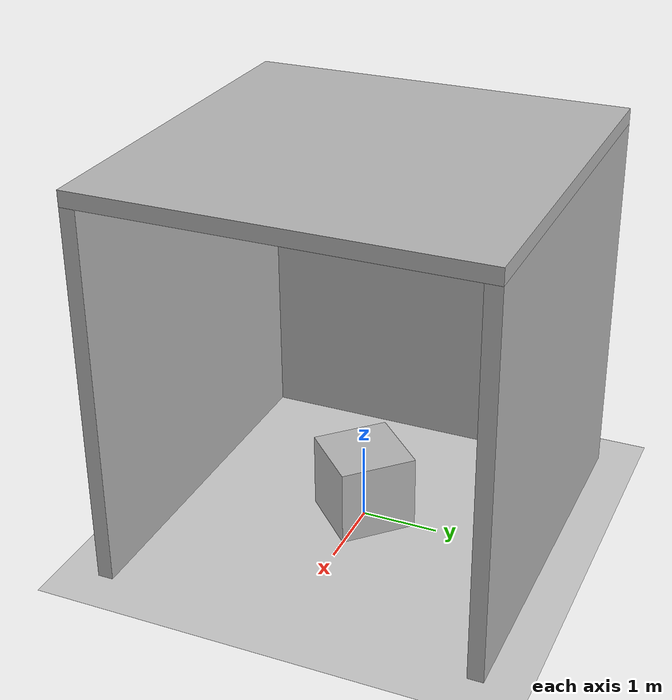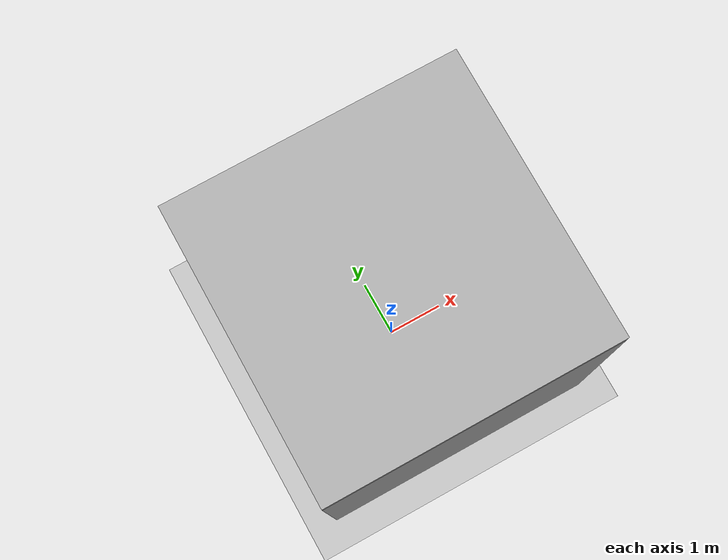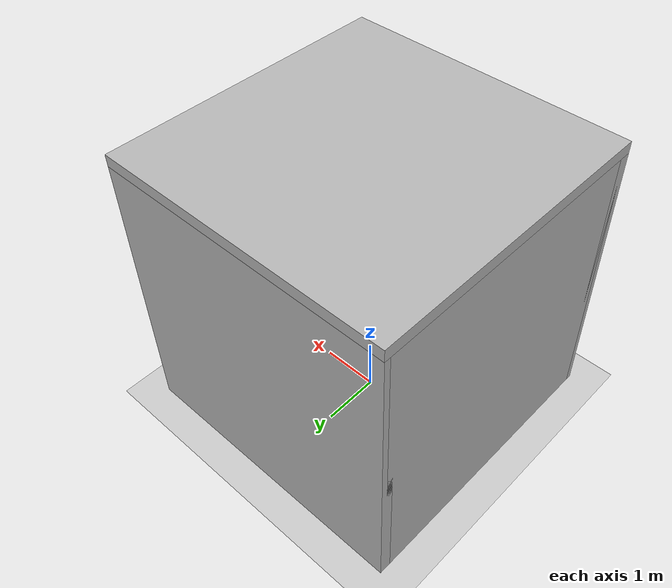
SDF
<?xml version="1.0" ?>
<sdf version="1.6">
  <world name="default">

    <scene>
      <ambient>1.0 1.0 1.0 1.0</ambient>
      <grid>0</grid>
      <origin_visual>0</origin_visual>
      <sky></sky>
    </scene>

    <model name="ground_plane">
      <static>true</static>
      <link name="link">
        <collision name="collision">
          <geometry>
            <plane>
              <normal>0 0 1</normal>
              <size>100 100</size>
            </plane>
          </geometry>
          <surface>
            <friction>
              <ode>
                <mu>100</mu>
                <mu2>50</mu2>
              </ode>
            </friction>
          </surface>
        </collision>
        <visual name="visual">
          <cast_shadows>false</cast_shadows>
          <geometry>
            <plane>
              <normal>0 0 1</normal>
              <size>100 100</size>
            </plane>
          </geometry>
          <plugin name="ssao" filename="libAmbientOcclusionVisualPlugin.so"/>
        </visual>
      </link>
    </model>

    <model name="box">
      <pose>0 0 0.5 0 0 0.785</pose>
      <link name="link">
        <collision name="collision">
          <geometry>
            <box>
              <size>1 1 1</size>
            </box>
          </geometry>
        </collision>
        <visual name="visual">
          <geometry>
            <box>
              <size>1 1 1</size>
            </box>
          </geometry>
        </visual>
      </link>
    </model>

    <model name="top">
      <pose>0 0 5 0 0 0</pose>
      <static>true</static>
      <link name="link">
        <collision name="collision">
          <geometry>
            <box>
              <size>5 5 0.2</size>
            </box>
          </geometry>
        </collision>
        <visual name="visual">
          <geometry>
            <box>
              <size>5 5 0.2</size>
            </box>
          </geometry>
        </visual>
      </link>
    </model>

    <model name="left">
      <pose>0 -2.4 2.45 0 0 0</pose>
      <static>true</static>
      <link name="link">
        <collision name="collision">
          <geometry>
            <box>
              <size>5 0.2 4.9</size>
            </box>
          </geometry>
        </collision>
        <visual name="visual">
          <geometry>
            <box>
              <size>5 0.2 4.9</size>
            </box>
          </geometry>
        </visual>
      </link>
    </model>

    <model name="right">
      <pose>0 2.4 2.45 0 0 0</pose>
      <static>true</static>
      <link name="link">
        <collision name="collision">
          <geometry>
            <box>
              <size>5 0.2 4.9</size>
            </box>
          </geometry>
        </collision>
        <visual name="visual">
          <geometry>
            <box>
              <size>5 0.2 4.9</size>
            </box>
          </geometry>
        </visual>
      </link>
    </model>

    <model name="back">
      <pose>-2.4 0 2.45 0 0 0</pose>
      <static>true</static>
      <link name="link">
        <collision name="collision">
          <geometry>
            <box>
              <size>0.2 4.8 4.9</size>
            </box>
          </geometry>
        </collision>
        <visual name="visual">
          <geometry>
            <box>
              <size>0.2 4.8 4.9</size>
            </box>
          </geometry>
        </visual>
      </link>
    </model>

  </world>
</sdf>
